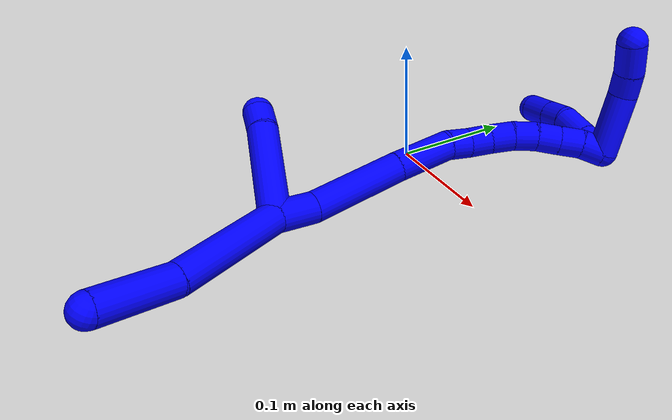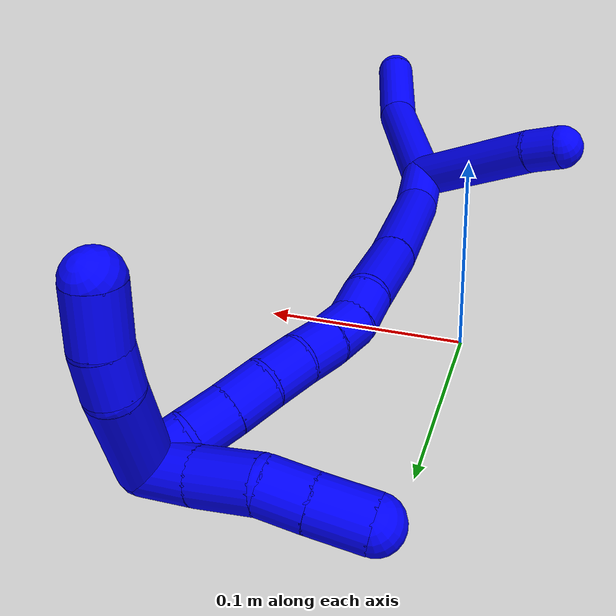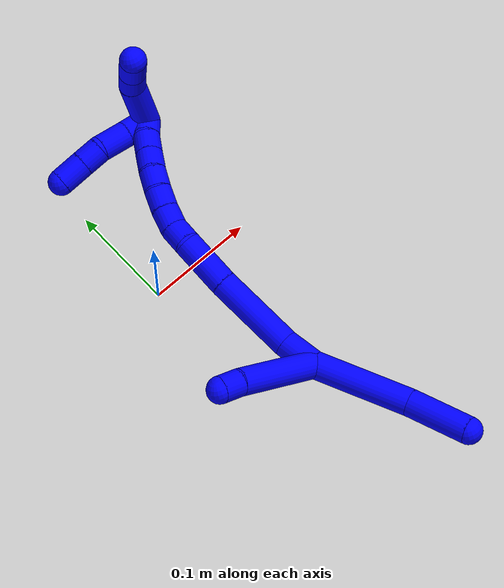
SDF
<sdf version="1.7">
 <world name="default">
  <model name="1">
   <static>0</static>
   <link name="1">
    <collision name="collision-cylinder-e_1_2_8">
     <pose>0.02124 -0.035903 -0.018217 2.04034 0.485449 0.766676</pose>
     <geometry><cylinder><radius>0.0125</radius><length>0.091039</length></cylinder></geometry>
     <surface>
      <friction><ode><mu>1.16</mu><mu2>1.16</mu2><slip1>0</slip1><slip2>0</slip2></ode></friction>
      <contact><ode><kp>1e+06</kp><kd>1</kd><max_vel>0</max_vel><min_depth>0.001</min_depth></ode></contact>
     </surface>
    </collision>
    <visual name="visual-cylinder-e_1_2_8">
     <pose>0.02124 -0.035903 -0.018217 2.04034 0.485449 0.766676</pose>
     <geometry><cylinder><radius>0.0125</radius><length>0.091039</length></cylinder></geometry>
     <material><ambient>0 0 1 1</ambient></material>
    </visual>
    <collision name="collision-cylinder-e_2_8_6">
     <pose>0.052009 -0.098543 -0.044397 1.86028 0.329181 0.438393</pose>
     <geometry><cylinder><radius>0.0125</radius><length>0.058961</length></cylinder></geometry>
     <surface>
      <friction><ode><mu>1.16</mu><mu2>1.16</mu2><slip1>0</slip1><slip2>0</slip2></ode></friction>
      <contact><ode><kp>1e+06</kp><kd>1</kd><max_vel>0</max_vel><min_depth>0.001</min_depth></ode></contact>
     </surface>
    </collision>
    <visual name="visual-cylinder-e_2_8_6">
     <pose>0.052009 -0.098543 -0.044397 1.86028 0.329181 0.438393</pose>
     <geometry><cylinder><radius>0.0125</radius><length>0.058961</length></cylinder></geometry>
     <material><ambient>0 0 1 1</ambient></material>
    </visual>
    <collision name="collision-cylinder-e_1_2_9">
     <pose>-0.036033 -0.000661 0.017338 0.038083 -1.12204 -0.023932</pose>
     <geometry><cylinder><radius>0.0125</radius><length>0.079986</length></cylinder></geometry>
     <surface>
      <friction><ode><mu>1.16</mu><mu2>1.16</mu2><slip1>0</slip1><slip2>0</slip2></ode></friction>
      <contact><ode><kp>1e+06</kp><kd>1</kd><max_vel>0</max_vel><min_depth>0.001</min_depth></ode></contact>
     </surface>
    </collision>
    <visual name="visual-cylinder-e_1_2_9">
     <pose>-0.036033 -0.000661 0.017338 0.038083 -1.12204 -0.023932</pose>
     <geometry><cylinder><radius>0.0125</radius><length>0.079986</length></cylinder></geometry>
     <material><ambient>0 0 1 1</ambient></material>
    </visual>
    <collision name="collision-cylinder-e_2_9_5">
     <pose>-0.081603 -0.001489 0.037702 0.055345 -1.2631 -0.040489</pose>
     <geometry><cylinder><radius>0.0125</radius><length>0.020014</length></cylinder></geometry>
     <surface>
      <friction><ode><mu>1.16</mu><mu2>1.16</mu2><slip1>0</slip1><slip2>0</slip2></ode></friction>
      <contact><ode><kp>1e+06</kp><kd>1</kd><max_vel>0</max_vel><min_depth>0.001</min_depth></ode></contact>
     </surface>
    </collision>
    <visual name="visual-cylinder-e_2_9_5">
     <pose>-0.081603 -0.001489 0.037702 0.055345 -1.2631 -0.040489</pose>
     <geometry><cylinder><radius>0.0125</radius><length>0.020014</length></cylinder></geometry>
     <material><ambient>0 0 1 1</ambient></material>
    </visual>
    <collision name="collision-cylinder-e_1_2_10">
     <pose>-0.002741 0.015048 0.006074 -1.18714 -0.167348 0.113059</pose>
     <geometry><cylinder><radius>0.0125</radius><length>0.032914</length></cylinder></geometry>
     <surface>
      <friction><ode><mu>1.16</mu><mu2>1.16</mu2><slip1>0</slip1><slip2>0</slip2></ode></friction>
      <contact><ode><kp>1e+06</kp><kd>1</kd><max_vel>0</max_vel><min_depth>0.001</min_depth></ode></contact>
     </surface>
    </collision>
    <visual name="visual-cylinder-e_1_2_10">
     <pose>-0.002741 0.015048 0.006074 -1.18714 -0.167348 0.113059</pose>
     <geometry><cylinder><radius>0.0125</radius><length>0.032914</length></cylinder></geometry>
     <material><ambient>0 0 1 1</ambient></material>
    </visual>
    <collision name="collision-cylinder-e_2_10_11">
     <pose>-0.010926 0.060593 0.035688 -0.91346 -0.140363 0.069058</pose>
     <geometry><cylinder><radius>0.0125</radius><length>0.077817</length></cylinder></geometry>
     <surface>
      <friction><ode><mu>1.16</mu><mu2>1.16</mu2><slip1>0</slip1><slip2>0</slip2></ode></friction>
      <contact><ode><kp>1e+06</kp><kd>1</kd><max_vel>0</max_vel><min_depth>0.001</min_depth></ode></contact>
     </surface>
    </collision>
    <visual name="visual-cylinder-e_2_10_11">
     <pose>-0.010926 0.060593 0.035688 -0.91346 -0.140363 0.069058</pose>
     <geometry><cylinder><radius>0.0125</radius><length>0.077817</length></cylinder></geometry>
     <material><ambient>0 0 1 1</ambient></material>
    </visual>
    <collision name="collision-cylinder-e_3_11_12">
     <pose>-0.018209 0.110372 0.074335 -0.906186 -0.074978 0.036518</pose>
     <geometry><cylinder><radius>0.0125</radius><length>0.049128</length></cylinder></geometry>
     <surface>
      <friction><ode><mu>1.16</mu><mu2>1.16</mu2><slip1>0</slip1><slip2>0</slip2></ode></friction>
      <contact><ode><kp>1e+06</kp><kd>1</kd><max_vel>0</max_vel><min_depth>0.001</min_depth></ode></contact>
     </surface>
    </collision>
    <visual name="visual-cylinder-e_3_11_12">
     <pose>-0.018209 0.110372 0.074335 -0.906186 -0.074978 0.036518</pose>
     <geometry><cylinder><radius>0.0125</radius><length>0.049128</length></cylinder></geometry>
     <material><ambient>0 0 1 1</ambient></material>
    </visual>
    <collision name="collision-cylinder-e_4_12_13">
     <pose>-0.019828 0.138852 0.093409 -1.16369 0.022047 -0.014503</pose>
     <geometry><cylinder><radius>0.0125</radius><length>0.020039</length></cylinder></geometry>
     <surface>
      <friction><ode><mu>1.16</mu><mu2>1.16</mu2><slip1>0</slip1><slip2>0</slip2></ode></friction>
      <contact><ode><kp>1e+06</kp><kd>1</kd><max_vel>0</max_vel><min_depth>0.001</min_depth></ode></contact>
     </surface>
    </collision>
    <visual name="visual-cylinder-e_4_12_13">
     <pose>-0.019828 0.138852 0.093409 -1.16369 0.022047 -0.014503</pose>
     <geometry><cylinder><radius>0.0125</radius><length>0.020039</length></cylinder></geometry>
     <material><ambient>0 0 1 1</ambient></material>
    </visual>
    <collision name="collision-cylinder-e_5_13_14">
     <pose>-0.017404 0.156035 0.10304 -0.953702 0.221425 -0.114735</pose>
     <geometry><cylinder><radius>0.0125</radius><length>0.020071</length></cylinder></geometry>
     <surface>
      <friction><ode><mu>1.16</mu><mu2>1.16</mu2><slip1>0</slip1><slip2>0</slip2></ode></friction>
      <contact><ode><kp>1e+06</kp><kd>1</kd><max_vel>0</max_vel><min_depth>0.001</min_depth></ode></contact>
     </surface>
    </collision>
    <visual name="visual-cylinder-e_5_13_14">
     <pose>-0.017404 0.156035 0.10304 -0.953702 0.221425 -0.114735</pose>
     <geometry><cylinder><radius>0.0125</radius><length>0.020071</length></cylinder></geometry>
     <material><ambient>0 0 1 1</ambient></material>
    </visual>
    <collision name="collision-cylinder-e_6_14_15">
     <pose>-0.01206 0.171629 0.114405 -0.927901 0.318932 -0.160608</pose>
     <geometry><cylinder><radius>0.0125</radius><length>0.020023</length></cylinder></geometry>
     <surface>
      <friction><ode><mu>1.16</mu><mu2>1.16</mu2><slip1>0</slip1><slip2>0</slip2></ode></friction>
      <contact><ode><kp>1e+06</kp><kd>1</kd><max_vel>0</max_vel><min_depth>0.001</min_depth></ode></contact>
     </surface>
    </collision>
    <visual name="visual-cylinder-e_6_14_15">
     <pose>-0.01206 0.171629 0.114405 -0.927901 0.318932 -0.160608</pose>
     <geometry><cylinder><radius>0.0125</radius><length>0.020023</length></cylinder></geometry>
     <material><ambient>0 0 1 1</ambient></material>
    </visual>
    <collision name="collision-cylinder-e_7_15_16">
     <pose>-0.004998 0.187283 0.124567 -1.06435 0.40309 -0.239474</pose>
     <geometry><cylinder><radius>0.0125</radius><length>0.020004</length></cylinder></geometry>
     <surface>
      <friction><ode><mu>1.16</mu><mu2>1.16</mu2><slip1>0</slip1><slip2>0</slip2></ode></friction>
      <contact><ode><kp>1e+06</kp><kd>1</kd><max_vel>0</max_vel><min_depth>0.001</min_depth></ode></contact>
     </surface>
    </collision>
    <visual name="visual-cylinder-e_7_15_16">
     <pose>-0.004998 0.187283 0.124567 -1.06435 0.40309 -0.239474</pose>
     <geometry><cylinder><radius>0.0125</radius><length>0.020004</length></cylinder></geometry>
     <material><ambient>0 0 1 1</ambient></material>
    </visual>
    <collision name="collision-cylinder-e_8_16_17">
     <pose>0.003654 0.203559 0.132178 -1.20542 0.492524 -0.342548</pose>
     <geometry><cylinder><radius>0.0125</radius><length>0.020001</length></cylinder></geometry>
     <surface>
      <friction><ode><mu>1.16</mu><mu2>1.16</mu2><slip1>0</slip1><slip2>0</slip2></ode></friction>
      <contact><ode><kp>1e+06</kp><kd>1</kd><max_vel>0</max_vel><min_depth>0.001</min_depth></ode></contact>
     </surface>
    </collision>
    <visual name="visual-cylinder-e_8_16_17">
     <pose>0.003654 0.203559 0.132178 -1.20542 0.492524 -0.342548</pose>
     <geometry><cylinder><radius>0.0125</radius><length>0.020001</length></cylinder></geometry>
     <material><ambient>0 0 1 1</ambient></material>
    </visual>
    <collision name="collision-cylinder-e_9_17_18">
     <pose>0.013293 0.2198 0.138755 -1.16643 0.513095 -0.342758</pose>
     <geometry><cylinder><radius>0.0125</radius><length>0.020003</length></cylinder></geometry>
     <surface>
      <friction><ode><mu>1.16</mu><mu2>1.16</mu2><slip1>0</slip1><slip2>0</slip2></ode></friction>
      <contact><ode><kp>1e+06</kp><kd>1</kd><max_vel>0</max_vel><min_depth>0.001</min_depth></ode></contact>
     </surface>
    </collision>
    <visual name="visual-cylinder-e_9_17_18">
     <pose>0.013293 0.2198 0.138755 -1.16643 0.513095 -0.342758</pose>
     <geometry><cylinder><radius>0.0125</radius><length>0.020003</length></cylinder></geometry>
     <material><ambient>0 0 1 1</ambient></material>
    </visual>
    <collision name="collision-cylinder-e_10_18_1">
     <pose>0.024276 0.235589 0.143796 -1.36639 0.652816 -0.537732</pose>
     <geometry><cylinder><radius>0.0125</radius><length>0.02</length></cylinder></geometry>
     <surface>
      <friction><ode><mu>1.16</mu><mu2>1.16</mu2><slip1>0</slip1><slip2>0</slip2></ode></friction>
      <contact><ode><kp>1e+06</kp><kd>1</kd><max_vel>0</max_vel><min_depth>0.001</min_depth></ode></contact>
     </surface>
    </collision>
    <visual name="visual-cylinder-e_10_18_1">
     <pose>0.024276 0.235589 0.143796 -1.36639 0.652816 -0.537732</pose>
     <geometry><cylinder><radius>0.0125</radius><length>0.02</length></cylinder></geometry>
     <material><ambient>0 0 1 1</ambient></material>
    </visual>
    <collision name="collision-cylinder-e_1_1_19">
     <pose>0.027379 0.236905 0.170898 0.248306 -0.112521 -0.014057</pose>
     <geometry><cylinder><radius>0.0125</radius><length>0.052926</length></cylinder></geometry>
     <surface>
      <friction><ode><mu>1.16</mu><mu2>1.16</mu2><slip1>0</slip1><slip2>0</slip2></ode></friction>
      <contact><ode><kp>1e+06</kp><kd>1</kd><max_vel>0</max_vel><min_depth>0.001</min_depth></ode></contact>
     </surface>
    </collision>
    <visual name="visual-cylinder-e_1_1_19">
     <pose>0.027379 0.236905 0.170898 0.248306 -0.112521 -0.014057</pose>
     <geometry><cylinder><radius>0.0125</radius><length>0.052926</length></cylinder></geometry>
     <material><ambient>0 0 1 1</ambient></material>
    </visual>
    <collision name="collision-cylinder-e_2_19_20">
     <pose>0.02469 0.225516 0.205274 0.506142 0.027818 0.007195</pose>
     <geometry><cylinder><radius>0.0125</radius><length>0.02033</length></cylinder></geometry>
     <surface>
      <friction><ode><mu>1.16</mu><mu2>1.16</mu2><slip1>0</slip1><slip2>0</slip2></ode></friction>
      <contact><ode><kp>1e+06</kp><kd>1</kd><max_vel>0</max_vel><min_depth>0.001</min_depth></ode></contact>
     </surface>
    </collision>
    <visual name="visual-cylinder-e_2_19_20">
     <pose>0.02469 0.225516 0.205274 0.506142 0.027818 0.007195</pose>
     <geometry><cylinder><radius>0.0125</radius><length>0.02033</length></cylinder></geometry>
     <material><ambient>0 0 1 1</ambient></material>
    </visual>
    <collision name="collision-cylinder-e_3_20_4">
     <pose>0.024276 0.212592 0.224855 0.642157 -0.052152 -0.017349</pose>
     <geometry><cylinder><radius>0.0125</radius><length>0.026743</length></cylinder></geometry>
     <surface>
      <friction><ode><mu>1.16</mu><mu2>1.16</mu2><slip1>0</slip1><slip2>0</slip2></ode></friction>
      <contact><ode><kp>1e+06</kp><kd>1</kd><max_vel>0</max_vel><min_depth>0.001</min_depth></ode></contact>
     </surface>
    </collision>
    <visual name="visual-cylinder-e_3_20_4">
     <pose>0.024276 0.212592 0.224855 0.642157 -0.052152 -0.017349</pose>
     <geometry><cylinder><radius>0.0125</radius><length>0.026743</length></cylinder></geometry>
     <material><ambient>0 0 1 1</ambient></material>
    </visual>
    <collision name="collision-cylinder-e_1_1_21">
     <pose>0.018091 0.243457 0.145808 -0.221828 -1.53741 0.214601</pose>
     <geometry><cylinder><radius>0.0125</radius><length>0.024533</length></cylinder></geometry>
     <surface>
      <friction><ode><mu>1.16</mu><mu2>1.16</mu2><slip1>0</slip1><slip2>0</slip2></ode></friction>
      <contact><ode><kp>1e+06</kp><kd>1</kd><max_vel>0</max_vel><min_depth>0.001</min_depth></ode></contact>
     </surface>
    </collision>
    <visual name="visual-cylinder-e_1_1_21">
     <pose>0.018091 0.243457 0.145808 -0.221828 -1.53741 0.214601</pose>
     <geometry><cylinder><radius>0.0125</radius><length>0.024533</length></cylinder></geometry>
     <material><ambient>0 0 1 1</ambient></material>
    </visual>
    <collision name="collision-cylinder-e_2_21_22">
     <pose>-0.008522 0.243075 0.14739 0.379943 -1.4823 -0.3484</pose>
     <geometry><cylinder><radius>0.0125</radius><length>0.028819</length></cylinder></geometry>
     <surface>
      <friction><ode><mu>1.16</mu><mu2>1.16</mu2><slip1>0</slip1><slip2>0</slip2></ode></friction>
      <contact><ode><kp>1e+06</kp><kd>1</kd><max_vel>0</max_vel><min_depth>0.001</min_depth></ode></contact>
     </surface>
    </collision>
    <visual name="visual-cylinder-e_2_21_22">
     <pose>-0.008522 0.243075 0.14739 0.379943 -1.4823 -0.3484</pose>
     <geometry><cylinder><radius>0.0125</radius><length>0.028819</length></cylinder></geometry>
     <material><ambient>0 0 1 1</ambient></material>
    </visual>
    <collision name="collision-cylinder-e_3_22_23">
     <pose>-0.032904 0.243584 0.14628 -2.73708 -1.32706 2.62856</pose>
     <geometry><cylinder><radius>0.0125</radius><length>0.02067</length></cylinder></geometry>
     <surface>
      <friction><ode><mu>1.16</mu><mu2>1.16</mu2><slip1>0</slip1><slip2>0</slip2></ode></friction>
      <contact><ode><kp>1e+06</kp><kd>1</kd><max_vel>0</max_vel><min_depth>0.001</min_depth></ode></contact>
     </surface>
    </collision>
    <visual name="visual-cylinder-e_3_22_23">
     <pose>-0.032904 0.243584 0.14628 -2.73708 -1.32706 2.62856</pose>
     <geometry><cylinder><radius>0.0125</radius><length>0.02067</length></cylinder></geometry>
     <material><ambient>0 0 1 1</ambient></material>
    </visual>
    <collision name="collision-cylinder-e_4_23_3">
     <pose>-0.055582 0.245499 0.141181 -2.82055 -1.34111 2.73885</pose>
     <geometry><cylinder><radius>0.0125</radius><length>0.025978</length></cylinder></geometry>
     <surface>
      <friction><ode><mu>1.16</mu><mu2>1.16</mu2><slip1>0</slip1><slip2>0</slip2></ode></friction>
      <contact><ode><kp>1e+06</kp><kd>1</kd><max_vel>0</max_vel><min_depth>0.001</min_depth></ode></contact>
     </surface>
    </collision>
    <visual name="visual-cylinder-e_4_23_3">
     <pose>-0.055582 0.245499 0.141181 -2.82055 -1.34111 2.73885</pose>
     <geometry><cylinder><radius>0.0125</radius><length>0.025978</length></cylinder></geometry>
     <material><ambient>0 0 1 1</ambient></material>
    </visual>
    <collision name="collision-sphere-3">
     <pose>-0.06823 0.246432 0.138375 0 -0 0</pose>
     <geometry><sphere><radius>0.0125</radius></sphere></geometry>
     <surface>
      <friction><ode><mu>1.16</mu><mu2>1.16</mu2><slip1>0</slip1><slip2>0</slip2></ode></friction>
      <contact><ode><kp>1e+06</kp><kd>1</kd><max_vel>0</max_vel><min_depth>0.001</min_depth></ode></contact>
     </surface>
    </collision>
    <visual name="visual-sphere-3">
     <pose>-0.06823 0.246432 0.138375 0 -0 0</pose>
     <geometry><sphere><radius>0.0125</radius></sphere></geometry>
     <material><ambient>0 0 1 1</ambient></material>
    </visual>
    <collision name="collision-sphere-23">
     <pose>-0.042934 0.244566 0.143987 0 -0 0</pose>
     <geometry><sphere><radius>0.0125</radius></sphere></geometry>
     <surface>
      <friction><ode><mu>1.16</mu><mu2>1.16</mu2><slip1>0</slip1><slip2>0</slip2></ode></friction>
      <contact><ode><kp>1e+06</kp><kd>1</kd><max_vel>0</max_vel><min_depth>0.001</min_depth></ode></contact>
     </surface>
    </collision>
    <visual name="visual-sphere-23">
     <pose>-0.042934 0.244566 0.143987 0 -0 0</pose>
     <geometry><sphere><radius>0.0125</radius></sphere></geometry>
     <material><ambient>0 0 1 1</ambient></material>
    </visual>
    <collision name="collision-sphere-22">
     <pose>-0.022875 0.242603 0.148573 0 -0 0</pose>
     <geometry><sphere><radius>0.0125</radius></sphere></geometry>
     <surface>
      <friction><ode><mu>1.16</mu><mu2>1.16</mu2><slip1>0</slip1><slip2>0</slip2></ode></friction>
      <contact><ode><kp>1e+06</kp><kd>1</kd><max_vel>0</max_vel><min_depth>0.001</min_depth></ode></contact>
     </surface>
    </collision>
    <visual name="visual-sphere-22">
     <pose>-0.022875 0.242603 0.148573 0 -0 0</pose>
     <geometry><sphere><radius>0.0125</radius></sphere></geometry>
     <material><ambient>0 0 1 1</ambient></material>
    </visual>
    <collision name="collision-sphere-21">
     <pose>0.005831 0.243547 0.146207 0 -0 0</pose>
     <geometry><sphere><radius>0.0125</radius></sphere></geometry>
     <surface>
      <friction><ode><mu>1.16</mu><mu2>1.16</mu2><slip1>0</slip1><slip2>0</slip2></ode></friction>
      <contact><ode><kp>1e+06</kp><kd>1</kd><max_vel>0</max_vel><min_depth>0.001</min_depth></ode></contact>
     </surface>
    </collision>
    <visual name="visual-sphere-21">
     <pose>0.005831 0.243547 0.146207 0 -0 0</pose>
     <geometry><sphere><radius>0.0125</radius></sphere></geometry>
     <material><ambient>0 0 1 1</ambient></material>
    </visual>
    <collision name="collision-sphere-4">
     <pose>0.023579 0.204594 0.235549 0 -0 0</pose>
     <geometry><sphere><radius>0.0125</radius></sphere></geometry>
     <surface>
      <friction><ode><mu>1.16</mu><mu2>1.16</mu2><slip1>0</slip1><slip2>0</slip2></ode></friction>
      <contact><ode><kp>1e+06</kp><kd>1</kd><max_vel>0</max_vel><min_depth>0.001</min_depth></ode></contact>
     </surface>
    </collision>
    <visual name="visual-sphere-4">
     <pose>0.023579 0.204594 0.235549 0 -0 0</pose>
     <geometry><sphere><radius>0.0125</radius></sphere></geometry>
     <material><ambient>0 0 1 1</ambient></material>
    </visual>
    <collision name="collision-sphere-20">
     <pose>0.024973 0.22059 0.214162 0 -0 0</pose>
     <geometry><sphere><radius>0.0125</radius></sphere></geometry>
     <surface>
      <friction><ode><mu>1.16</mu><mu2>1.16</mu2><slip1>0</slip1><slip2>0</slip2></ode></friction>
      <contact><ode><kp>1e+06</kp><kd>1</kd><max_vel>0</max_vel><min_depth>0.001</min_depth></ode></contact>
     </surface>
    </collision>
    <visual name="visual-sphere-20">
     <pose>0.024973 0.22059 0.214162 0 -0 0</pose>
     <geometry><sphere><radius>0.0125</radius></sphere></geometry>
     <material><ambient>0 0 1 1</ambient></material>
    </visual>
    <collision name="collision-sphere-10">
     <pose>-0.005482 0.030095 0.012148 0 -0 0</pose>
     <geometry><sphere><radius>0.0125</radius></sphere></geometry>
     <surface>
      <friction><ode><mu>1.16</mu><mu2>1.16</mu2><slip1>0</slip1><slip2>0</slip2></ode></friction>
      <contact><ode><kp>1e+06</kp><kd>1</kd><max_vel>0</max_vel><min_depth>0.001</min_depth></ode></contact>
     </surface>
    </collision>
    <visual name="visual-sphere-10">
     <pose>-0.005482 0.030095 0.012148 0 -0 0</pose>
     <geometry><sphere><radius>0.0125</radius></sphere></geometry>
     <material><ambient>0 0 1 1</ambient></material>
    </visual>
    <collision name="collision-sphere-5">
     <pose>-0.09114 -0.001657 0.040729 0 -0 0</pose>
     <geometry><sphere><radius>0.0125</radius></sphere></geometry>
     <surface>
      <friction><ode><mu>1.16</mu><mu2>1.16</mu2><slip1>0</slip1><slip2>0</slip2></ode></friction>
      <contact><ode><kp>1e+06</kp><kd>1</kd><max_vel>0</max_vel><min_depth>0.001</min_depth></ode></contact>
     </surface>
    </collision>
    <visual name="visual-sphere-5">
     <pose>-0.09114 -0.001657 0.040729 0 -0 0</pose>
     <geometry><sphere><radius>0.0125</radius></sphere></geometry>
     <material><ambient>0 0 1 1</ambient></material>
    </visual>
    <collision name="collision-sphere-6">
     <pose>0.061539 -0.12528 -0.052361 0 -0 0</pose>
     <geometry><sphere><radius>0.0125</radius></sphere></geometry>
     <surface>
      <friction><ode><mu>1.16</mu><mu2>1.16</mu2><slip1>0</slip1><slip2>0</slip2></ode></friction>
      <contact><ode><kp>1e+06</kp><kd>1</kd><max_vel>0</max_vel><min_depth>0.001</min_depth></ode></contact>
     </surface>
    </collision>
    <visual name="visual-sphere-6">
     <pose>0.061539 -0.12528 -0.052361 0 -0 0</pose>
     <geometry><sphere><radius>0.0125</radius></sphere></geometry>
     <material><ambient>0 0 1 1</ambient></material>
    </visual>
    <collision name="collision-sphere-9">
     <pose>-0.072066 -0.001321 0.034676 0 -0 0</pose>
     <geometry><sphere><radius>0.0125</radius></sphere></geometry>
     <surface>
      <friction><ode><mu>1.16</mu><mu2>1.16</mu2><slip1>0</slip1><slip2>0</slip2></ode></friction>
      <contact><ode><kp>1e+06</kp><kd>1</kd><max_vel>0</max_vel><min_depth>0.001</min_depth></ode></contact>
     </surface>
    </collision>
    <visual name="visual-sphere-9">
     <pose>-0.072066 -0.001321 0.034676 0 -0 0</pose>
     <geometry><sphere><radius>0.0125</radius></sphere></geometry>
     <material><ambient>0 0 1 1</ambient></material>
    </visual>
    <collision name="collision-sphere-2">
     <geometry><sphere><radius>0.0125</radius></sphere></geometry>
     <surface>
      <friction><ode><mu>1.16</mu><mu2>1.16</mu2><slip1>0</slip1><slip2>0</slip2></ode></friction>
      <contact><ode><kp>1e+06</kp><kd>1</kd><max_vel>0</max_vel><min_depth>0.001</min_depth></ode></contact>
     </surface>
    </collision>
    <visual name="visual-sphere-2">
     <geometry><sphere><radius>0.0125</radius></sphere></geometry>
     <material><ambient>0 0 1 1</ambient></material>
    </visual>
    <collision name="collision-sphere-19">
     <pose>0.024408 0.230442 0.196387 0 -0 0</pose>
     <geometry><sphere><radius>0.0125</radius></sphere></geometry>
     <surface>
      <friction><ode><mu>1.16</mu><mu2>1.16</mu2><slip1>0</slip1><slip2>0</slip2></ode></friction>
      <contact><ode><kp>1e+06</kp><kd>1</kd><max_vel>0</max_vel><min_depth>0.001</min_depth></ode></contact>
     </surface>
    </collision>
    <visual name="visual-sphere-19">
     <pose>0.024408 0.230442 0.196387 0 -0 0</pose>
     <geometry><sphere><radius>0.0125</radius></sphere></geometry>
     <material><ambient>0 0 1 1</ambient></material>
    </visual>
    <collision name="collision-sphere-8">
     <pose>0.042479 -0.071806 -0.036434 0 -0 0</pose>
     <geometry><sphere><radius>0.0125</radius></sphere></geometry>
     <surface>
      <friction><ode><mu>1.16</mu><mu2>1.16</mu2><slip1>0</slip1><slip2>0</slip2></ode></friction>
      <contact><ode><kp>1e+06</kp><kd>1</kd><max_vel>0</max_vel><min_depth>0.001</min_depth></ode></contact>
     </surface>
    </collision>
    <visual name="visual-sphere-8">
     <pose>0.042479 -0.071806 -0.036434 0 -0 0</pose>
     <geometry><sphere><radius>0.0125</radius></sphere></geometry>
     <material><ambient>0 0 1 1</ambient></material>
    </visual>
    <collision name="collision-sphere-11">
     <pose>-0.016369 0.091091 0.059227 0 -0 0</pose>
     <geometry><sphere><radius>0.0125</radius></sphere></geometry>
     <surface>
      <friction><ode><mu>1.16</mu><mu2>1.16</mu2><slip1>0</slip1><slip2>0</slip2></ode></friction>
      <contact><ode><kp>1e+06</kp><kd>1</kd><max_vel>0</max_vel><min_depth>0.001</min_depth></ode></contact>
     </surface>
    </collision>
    <visual name="visual-sphere-11">
     <pose>-0.016369 0.091091 0.059227 0 -0 0</pose>
     <geometry><sphere><radius>0.0125</radius></sphere></geometry>
     <material><ambient>0 0 1 1</ambient></material>
    </visual>
    <collision name="collision-sphere-12">
     <pose>-0.020049 0.129654 0.089442 0 -0 0</pose>
     <geometry><sphere><radius>0.0125</radius></sphere></geometry>
     <surface>
      <friction><ode><mu>1.16</mu><mu2>1.16</mu2><slip1>0</slip1><slip2>0</slip2></ode></friction>
      <contact><ode><kp>1e+06</kp><kd>1</kd><max_vel>0</max_vel><min_depth>0.001</min_depth></ode></contact>
     </surface>
    </collision>
    <visual name="visual-sphere-12">
     <pose>-0.020049 0.129654 0.089442 0 -0 0</pose>
     <geometry><sphere><radius>0.0125</radius></sphere></geometry>
     <material><ambient>0 0 1 1</ambient></material>
    </visual>
    <collision name="collision-sphere-13">
     <pose>-0.019608 0.14805 0.097375 0 -0 0</pose>
     <geometry><sphere><radius>0.0125</radius></sphere></geometry>
     <surface>
      <friction><ode><mu>1.16</mu><mu2>1.16</mu2><slip1>0</slip1><slip2>0</slip2></ode></friction>
      <contact><ode><kp>1e+06</kp><kd>1</kd><max_vel>0</max_vel><min_depth>0.001</min_depth></ode></contact>
     </surface>
    </collision>
    <visual name="visual-sphere-13">
     <pose>-0.019608 0.14805 0.097375 0 -0 0</pose>
     <geometry><sphere><radius>0.0125</radius></sphere></geometry>
     <material><ambient>0 0 1 1</ambient></material>
    </visual>
    <collision name="collision-sphere-14">
     <pose>-0.015199 0.16402 0.108706 0 -0 0</pose>
     <geometry><sphere><radius>0.0125</radius></sphere></geometry>
     <surface>
      <friction><ode><mu>1.16</mu><mu2>1.16</mu2><slip1>0</slip1><slip2>0</slip2></ode></friction>
      <contact><ode><kp>1e+06</kp><kd>1</kd><max_vel>0</max_vel><min_depth>0.001</min_depth></ode></contact>
     </surface>
    </collision>
    <visual name="visual-sphere-14">
     <pose>-0.015199 0.16402 0.108706 0 -0 0</pose>
     <geometry><sphere><radius>0.0125</radius></sphere></geometry>
     <material><ambient>0 0 1 1</ambient></material>
    </visual>
    <collision name="collision-sphere-15">
     <pose>-0.008921 0.179237 0.120104 0 -0 0</pose>
     <geometry><sphere><radius>0.0125</radius></sphere></geometry>
     <surface>
      <friction><ode><mu>1.16</mu><mu2>1.16</mu2><slip1>0</slip1><slip2>0</slip2></ode></friction>
      <contact><ode><kp>1e+06</kp><kd>1</kd><max_vel>0</max_vel><min_depth>0.001</min_depth></ode></contact>
     </surface>
    </collision>
    <visual name="visual-sphere-15">
     <pose>-0.008921 0.179237 0.120104 0 -0 0</pose>
     <geometry><sphere><radius>0.0125</radius></sphere></geometry>
     <material><ambient>0 0 1 1</ambient></material>
    </visual>
    <collision name="collision-sphere-16">
     <pose>-0.001074 0.195328 0.12903 0 -0 0</pose>
     <geometry><sphere><radius>0.0125</radius></sphere></geometry>
     <surface>
      <friction><ode><mu>1.16</mu><mu2>1.16</mu2><slip1>0</slip1><slip2>0</slip2></ode></friction>
      <contact><ode><kp>1e+06</kp><kd>1</kd><max_vel>0</max_vel><min_depth>0.001</min_depth></ode></contact>
     </surface>
    </collision>
    <visual name="visual-sphere-16">
     <pose>-0.001074 0.195328 0.12903 0 -0 0</pose>
     <geometry><sphere><radius>0.0125</radius></sphere></geometry>
     <material><ambient>0 0 1 1</ambient></material>
    </visual>
    <collision name="collision-sphere-17">
     <pose>0.008383 0.211789 0.135327 0 -0 0</pose>
     <geometry><sphere><radius>0.0125</radius></sphere></geometry>
     <surface>
      <friction><ode><mu>1.16</mu><mu2>1.16</mu2><slip1>0</slip1><slip2>0</slip2></ode></friction>
      <contact><ode><kp>1e+06</kp><kd>1</kd><max_vel>0</max_vel><min_depth>0.001</min_depth></ode></contact>
     </surface>
    </collision>
    <visual name="visual-sphere-17">
     <pose>0.008383 0.211789 0.135327 0 -0 0</pose>
     <geometry><sphere><radius>0.0125</radius></sphere></geometry>
     <material><ambient>0 0 1 1</ambient></material>
    </visual>
    <collision name="collision-sphere-18">
     <pose>0.018202 0.22781 0.142183 0 -0 0</pose>
     <geometry><sphere><radius>0.0125</radius></sphere></geometry>
     <surface>
      <friction><ode><mu>1.16</mu><mu2>1.16</mu2><slip1>0</slip1><slip2>0</slip2></ode></friction>
      <contact><ode><kp>1e+06</kp><kd>1</kd><max_vel>0</max_vel><min_depth>0.001</min_depth></ode></contact>
     </surface>
    </collision>
    <visual name="visual-sphere-18">
     <pose>0.018202 0.22781 0.142183 0 -0 0</pose>
     <geometry><sphere><radius>0.0125</radius></sphere></geometry>
     <material><ambient>0 0 1 1</ambient></material>
    </visual>
    <collision name="collision-sphere-1">
     <pose>0.03035 0.243367 0.145408 0 -0 0</pose>
     <geometry><sphere><radius>0.0125</radius></sphere></geometry>
     <surface>
      <friction><ode><mu>1.16</mu><mu2>1.16</mu2><slip1>0</slip1><slip2>0</slip2></ode></friction>
      <contact><ode><kp>1e+06</kp><kd>1</kd><max_vel>0</max_vel><min_depth>0.001</min_depth></ode></contact>
     </surface>
    </collision>
    <visual name="visual-sphere-1">
     <pose>0.03035 0.243367 0.145408 0 -0 0</pose>
     <geometry><sphere><radius>0.0125</radius></sphere></geometry>
     <material><ambient>0 0 1 1</ambient></material>
    </visual>
    <inertial>
     <pose>-0.001253 0.09993 0.073679 0 -0 0</pose>
     <mass>0.75</mass>
     <inertia>
      <ixx>0.000205</ixx>
      <ixy>0</ixy>
      <ixz>0</ixz>
      <iyy>0.000165</iyy>
      <iyz>0</iyz>
      <izz>5.9e-05</izz>
     </inertia>
    </inertial>
   </link>
   <pose>0.054048 -0.146894 0.016261 -0.544409 0.071817 -0.071397</pose>
  </model>
 </world>
</sdf>
